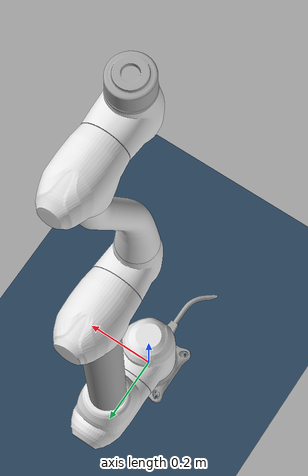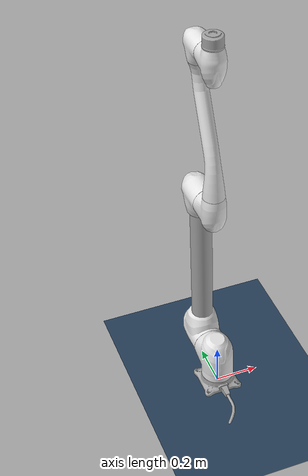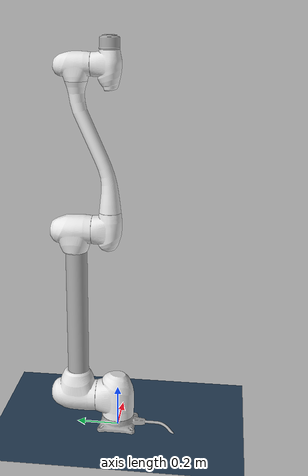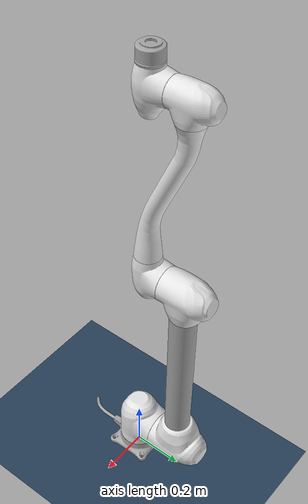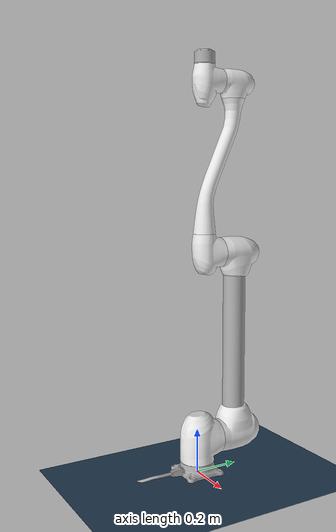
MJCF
<?xml version='1.0' encoding='utf-8'?>
<mujoco model="m0617 scene">
  <include file="m0617.xml" />
  <compiler angle="radian" meshdir="../" />

  <statistic center="0.3 0 0.4" extent="1" />

  <visual>
    <headlight diffuse="0.6 0.6 0.6" ambient="0.3 0.3 0.3" specular="0 0 0" />
    <rgba haze="0.15 0.25 0.35 1" />
    <global azimuth="120" elevation="-20" />
  </visual>

  <asset>
    <texture type="skybox" builtin="gradient" rgb1="0.3 0.5 0.7" rgb2="0 0 0" width="512" height="3072" />
    <texture type="2d" name="groundplane" builtin="checker" mark="edge" rgb1="0.2 0.3 0.4" rgb2="0.1 0.2 0.3" markrgb="0.8 0.8 0.8" width="300" height="300" />
    <material name="groundplane" texture="groundplane" texuniform="true" texrepeat="5 5" reflectance="0.2" />
  </asset>

  <worldbody>
    <light pos="0 0 1.5" dir="0 0 -1" directional="true" />
    <geom name="floor" size="0 0 0.05" type="plane" material="groundplane" />
  </worldbody>

</mujoco>

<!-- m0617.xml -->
<mujoco model="m0617">

  <asset>
    <mesh name="MF0617_0_0" file="m0617/assets/MF0617_0_0.stl" scale="0.001 0.001 0.001"/>
    <mesh name="MF0617_1_0" file="m0617/assets/MF0617_1_0.stl" scale="0.001 0.001 0.001"/>
    <mesh name="MF0617_2_0" file="m0617/assets/MF0617_2_0.stl" scale="0.001 0.001 0.001"/>
    <mesh name="MF0617_2_1" file="m0617/assets/MF0617_2_1.stl" scale="0.001 0.001 0.001"/>
    <mesh name="MF0617_2_2" file="m0617/assets/MF0617_2_2.stl" scale="0.001 0.001 0.001"/>
    <mesh name="MF0617_3_0" file="m0617/assets/MF0617_3_0.stl" scale="0.001 0.001 0.001"/>
    <mesh name="MF0617_4_0" file="m0617/assets/MF0617_4_0.stl" scale="0.001 0.001 0.001"/>
    <mesh name="MF0617_4_1" file="m0617/assets/MF0617_4_1.stl" scale="0.001 0.001 0.001"/>
    <mesh name="MF0617_5_0" file="m0617/assets/MF0617_5_0.stl" scale="0.001 0.001 0.001"/>
    <mesh name="MF0617_6_0" file="m0617/assets/MF0617_6_0.stl" scale="0.001 0.001 0.001"/>

    <material name="white" rgba="0.9 0.9 0.9 1"/>
    <material name="metal" rgba="0.65 0.65 0.65 1"/>
  </asset>

  <worldbody>
    <geom type="mesh" contype="1" conaffinity="1" density="0" group="1" mesh="MF0617_0_0" material="metal"/>
    <body name="link_1" pos="0 0 0.1530">
      <inertial pos="0.000119 0.0428 -0.006383" quat="0.254665 0.28969 -0.691124 0.611207" mass="7.8" diaginertia="0.0473264 0.0472093 0.0309423"/>
      <joint name="joint_1" pos="0 0 0" axis="0 0 1" range="-6.2832 6.2832" actuatorfrcrange="-346 346" damping="1600" frictionloss="1"/>
      <geom type="mesh" contype="1" conaffinity="1" density="0" group="1" mesh="MF0617_1_0" material="white"/>
      <body name="link_2" pos="0 0.0345 0" quat="0.499898 -0.500102 -0.5 -0.5">
        <inertial pos="0.35752 -5e-05 0.1582" quat="0.0100079 0.704803 0.0101714 0.709259" mass="11.55" diaginertia="1.62606 1.6244 0.0391819"/>
        <joint name="joint_2" pos="0 0 0" axis="0 0 1" range="-6.2832 6.2832" actuatorfrcrange="-346 346" damping="1600" frictionloss="1"/>
        <geom type="mesh" contype="1" conaffinity="1" density="0" group="1" mesh="MF0617_2_0" material="white"/>
        <geom type="mesh" contype="1" conaffinity="1" density="0" group="1" mesh="MF0617_2_1" material="metal"/>
        <geom type="mesh" contype="1" conaffinity="1" density="0" group="1" mesh="MF0617_2_2" material="white"/>
        <body name="link_3" pos="0.845 0 0" quat="0.707035 0 0 0.707179">
          <inertial pos="-1.5e-05 -0.006702 0.044608" quat="0.995174 -0.0980322 0.000308705 0.00417616" mass="3.68" diaginertia="0.0205791 0.0193788 0.0141811"/>
          <joint name="joint_3" pos="0 0 0" axis="0 0 1" range="-2.8798 2.8798" actuatorfrcrange="-163 163" damping="1300" frictionloss="1"/>
          <geom type="mesh" contype="1" conaffinity="1" density="0" group="1" mesh="MF0617_3_0" material="white"/>
          <body name="link_4" pos="0 -0.734 0" quat="0.707035 0.707179 0 0">
            <inertial pos="5.7e-05 0.091288 -0.25319" quat="0.99323 -0.116156 -0.000123673 -0.0017187" mass="4.28" diaginertia="0.35652 0.354528 0.0115856"/>
            <joint name="joint_4" pos="0 0 0" axis="0 0 1" range="-6.2832 6.2832" actuatorfrcrange="-50 50" damping="1050" frictionloss="1"/>
            <geom type="mesh" contype="1" conaffinity="1" density="0" group="1" mesh="MF0617_4_0" material="white"/>
            <geom type="mesh" contype="1" conaffinity="1" density="0" group="1" mesh="MF0617_4_1" material="white"/>
            <body name="link_5" quat="0.707035 -0.707179 0 0">
              <inertial pos="-0.000273 0.003651 0.032087" quat="0.710739 0.05419 -0.0499513 0.699584" mass="2.8" diaginertia="0.0132957 0.0120157 0.0103596"/>
              <joint name="joint_5" pos="0 0 0" axis="0 0 1" range="-6.2832 6.2832" actuatorfrcrange="-50 50" damping="1050" frictionloss="1"/>
              <geom type="mesh" contype="1" conaffinity="1" density="0" group="1" mesh="MF0617_5_0" material="white"/>
              <body name="link_6" pos="0 -0.121 0" quat="0.707035 0.707179 0 0">
                <inertial pos="-0.000292 7e-06 -0.0539" quat="0.53756 0.537199 -0.459029 0.460152" mass="1.16" diaginertia="0.00867762 0.00864399 0.00456129"/>
                <joint name="joint_6" pos="0 0 0" axis="0 0 1" range="-6.2832 6.2832" actuatorfrcrange="-50 50" damping="1050" frictionloss="1"/>
                <geom type="mesh" contype="1" conaffinity="1" density="0" group="1" mesh="MF0617_6_0" material="metal"/>
              </body>
            </body>
          </body>
        </body>
      </body>
    </body>
  </worldbody>

	<actuator>
		<position joint="joint_1" kp="10" kv="1" ctrlrange="-6.2832 6.2832"/>
		<position joint="joint_2" kp="10" kv="1" ctrlrange="-6.2832 6.2832"/>
		<position joint="joint_3" kp="10" kv="1" ctrlrange="-2.8798 2.8798"/>
		<position joint="joint_4" kp="10" kv="1" ctrlrange="-6.2832 6.2832"/>
		<position joint="joint_5" kp="10" kv="1" ctrlrange="-6.2832 6.2832"/>
		<position joint="joint_6" kp="10" kv="1" ctrlrange="-6.2832 6.2832"/>
	</actuator>
</mujoco>
